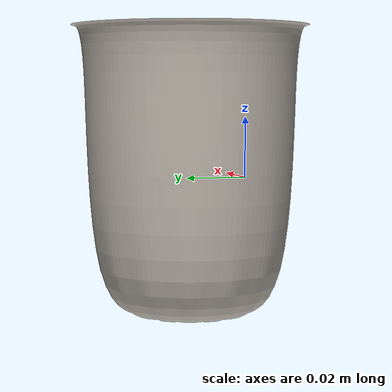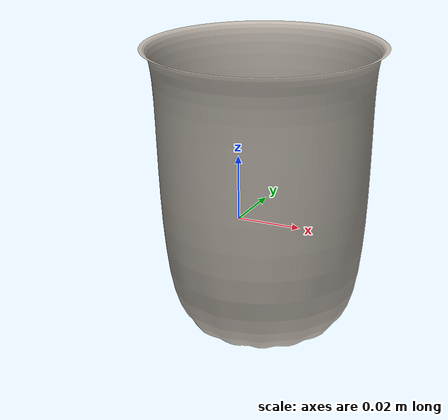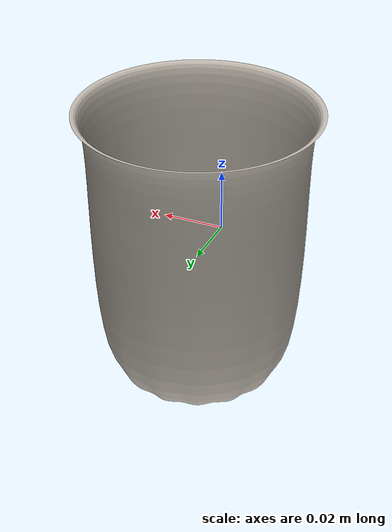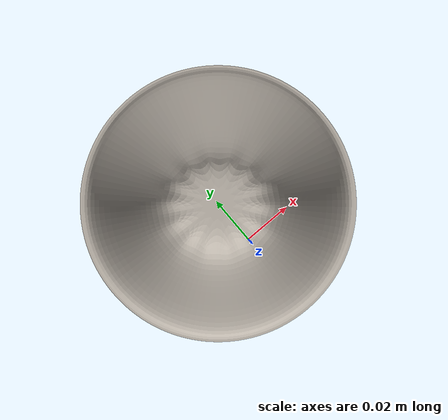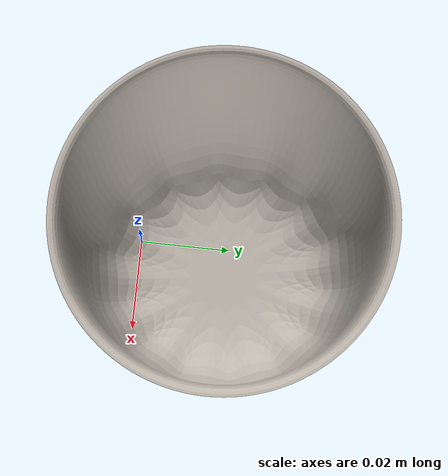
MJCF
<mujoco model="mug_14">
  <asset>
    <mesh file="visual/model_normalized_0.obj" name="model_normalized_0_vis" scale="0.115 0.115 0.115" refquat="-0.7071067811865477 0.0 0.0 0.7071067811865474"/>
    <texture type="2d" name="image0" file="visual/image0.png"/>
    <material name="canecaTex" texture="image0" specular="0.1" shininess="0.2" emission="0.15"/>
    <mesh file="collision/collision_mesh_collision_0.obj" name="mug_collision_mesh_0" scale="0.115 0.115 0.115" refquat="-0.7071067811865477 0.0 0.0 0.7071067811865474"/>
    <mesh file="collision/collision_mesh_collision_1.obj" name="mug_collision_mesh_1" scale="0.115 0.115 0.115" refquat="-0.7071067811865477 0.0 0.0 0.7071067811865474"/>
    <mesh file="collision/collision_mesh_collision_2.obj" name="mug_collision_mesh_2" scale="0.115 0.115 0.115" refquat="-0.7071067811865477 0.0 0.0 0.7071067811865474"/>
    <mesh file="collision/collision_mesh_collision_3.obj" name="mug_collision_mesh_3" scale="0.115 0.115 0.115" refquat="-0.7071067811865477 0.0 0.0 0.7071067811865474"/>
    <mesh file="collision/collision_mesh_collision_4.obj" name="mug_collision_mesh_4" scale="0.115 0.115 0.115" refquat="-0.7071067811865477 0.0 0.0 0.7071067811865474"/>
    <mesh file="collision/collision_mesh_collision_5.obj" name="mug_collision_mesh_5" scale="0.115 0.115 0.115" refquat="-0.7071067811865477 0.0 0.0 0.7071067811865474"/>
    <mesh file="collision/collision_mesh_collision_6.obj" name="mug_collision_mesh_6" scale="0.115 0.115 0.115" refquat="-0.7071067811865477 0.0 0.0 0.7071067811865474"/>
    <mesh file="collision/collision_mesh_collision_7.obj" name="mug_collision_mesh_7" scale="0.115 0.115 0.115" refquat="-0.7071067811865477 0.0 0.0 0.7071067811865474"/>
    <mesh file="collision/collision_mesh_collision_8.obj" name="mug_collision_mesh_8" scale="0.115 0.115 0.115" refquat="-0.7071067811865477 0.0 0.0 0.7071067811865474"/>
    <mesh file="collision/collision_mesh_collision_9.obj" name="mug_collision_mesh_9" scale="0.115 0.115 0.115" refquat="-0.7071067811865477 0.0 0.0 0.7071067811865474"/>
    <mesh file="collision/collision_mesh_collision_10.obj" name="mug_collision_mesh_10" scale="0.115 0.115 0.115" refquat="-0.7071067811865477 0.0 0.0 0.7071067811865474"/>
    <mesh file="collision/collision_mesh_collision_11.obj" name="mug_collision_mesh_11" scale="0.115 0.115 0.115" refquat="-0.7071067811865477 0.0 0.0 0.7071067811865474"/>
    <mesh file="collision/collision_mesh_collision_12.obj" name="mug_collision_mesh_12" scale="0.115 0.115 0.115" refquat="-0.7071067811865477 0.0 0.0 0.7071067811865474"/>
    <mesh file="collision/collision_mesh_collision_13.obj" name="mug_collision_mesh_13" scale="0.115 0.115 0.115" refquat="-0.7071067811865477 0.0 0.0 0.7071067811865474"/>
    <mesh file="collision/collision_mesh_collision_14.obj" name="mug_collision_mesh_14" scale="0.115 0.115 0.115" refquat="-0.7071067811865477 0.0 0.0 0.7071067811865474"/>
    <mesh file="collision/collision_mesh_collision_15.obj" name="mug_collision_mesh_15" scale="0.115 0.115 0.115" refquat="-0.7071067811865477 0.0 0.0 0.7071067811865474"/>
  </asset>
  <default>
    <default class="region">
      <geom group="1" conaffinity="0" contype="0" rgba="0 1 0 0" density="0"/>
    </default>
    <default class="collision">
      <geom group="3" rgba="0.5 0 0 0.5" density="0"/>
    </default>
  </default>
  <worldbody>
    <body>
      <body name="object">
        <geom density="0" friction="1.2 0.05 0.001" type="mesh" mesh="model_normalized_0_vis" conaffinity="0" contype="0" group="1" material="canecaTex" mass="0.3"/>
        <geom class="region" name="reg_bbox" type="box" pos="0.0 0.0 1.7250000022839275e-09" size="0.039281775899999996 0.0575 0.045194499175" density="0"/>        <geom mesh="mug_collision_mesh_0" type="mesh" class="collision" density="0"/>
        <geom mesh="mug_collision_mesh_1" type="mesh" class="collision" density="0"/>
        <geom mesh="mug_collision_mesh_2" type="mesh" class="collision" density="0"/>
        <geom mesh="mug_collision_mesh_3" type="mesh" class="collision" density="0"/>
        <geom mesh="mug_collision_mesh_4" type="mesh" class="collision" density="0"/>
        <geom mesh="mug_collision_mesh_5" type="mesh" class="collision" density="0"/>
        <geom mesh="mug_collision_mesh_6" type="mesh" class="collision" density="0"/>
        <geom mesh="mug_collision_mesh_7" type="mesh" class="collision" density="0"/>
        <geom mesh="mug_collision_mesh_8" type="mesh" class="collision" density="0"/>
        <geom mesh="mug_collision_mesh_9" type="mesh" class="collision" density="0"/>
        <geom mesh="mug_collision_mesh_10" type="mesh" class="collision" density="0"/>
        <geom mesh="mug_collision_mesh_11" type="mesh" class="collision" density="0"/>
        <geom mesh="mug_collision_mesh_12" type="mesh" class="collision" density="0"/>
        <geom mesh="mug_collision_mesh_13" type="mesh" class="collision" density="0"/>
        <geom mesh="mug_collision_mesh_14" type="mesh" class="collision" density="0"/>
        <geom mesh="mug_collision_mesh_15" type="mesh" class="collision" density="0"/>
        <geom rgba="0 0 0 0" size="0.038 0.035" pos="0 0.018 0.0" type="cylinder" name="liquid" class="region" density="0"/>        <geom rgba="0 0 0 0 " size="0.0345 0.038" pos="0 0.018 0.005" type="cylinder" name="reg_int" class="region" density="0"/>      </body>
    </body>
  </worldbody>
</mujoco>
